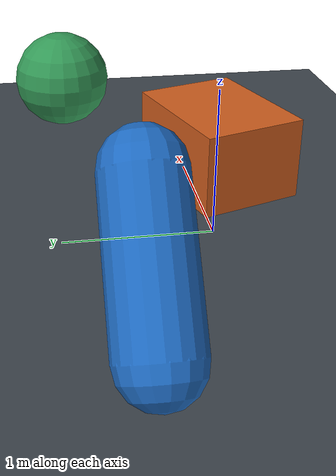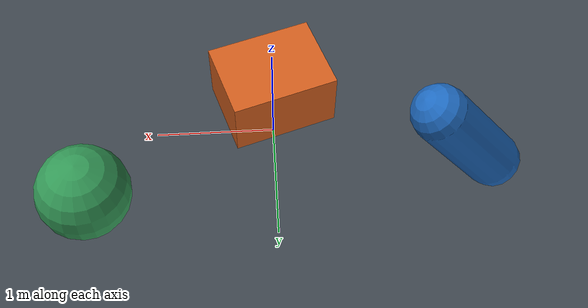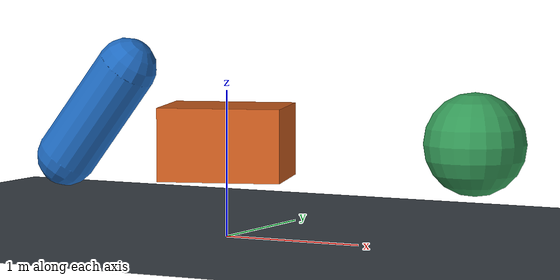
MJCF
<mujoco model="opengl native gizmo">
  <option gravity="0 0 0"/>
  <visual>
    <headlight ambient="0.25 0.25 0.25" diffuse="0.65 0.65 0.65" specular="0.25 0.25 0.25"/>
  </visual>
  <asset>
    <material name="floor" rgba="0.24 0.27 0.30 1"/>
    <material name="orange" rgba="0.82 0.37 0.12 1"/>
    <material name="blue" rgba="0.12 0.42 0.76 1"/>
    <material name="green" rgba="0.20 0.60 0.34 1"/>
  </asset>
  <worldbody>
    <light pos="-3 -4 7" dir="0.35 0.4 -1" diffuse="0.75 0.75 0.75"/>
    <geom name="floor" type="plane" size="7 7 0.1" material="floor"/>

    <body name="free_box" pos="0 0 0.65" euler="0 0 18">
      <freejoint/>
      <geom name="box" type="box" size="0.42 0.32 0.25" material="orange"/>
    </body>
    <body name="free_capsule" pos="-1.45 0.65 0.75" euler="0 38 -20">
      <freejoint/>
      <geom name="capsule" type="capsule" size="0.22 0.42" material="blue"/>
    </body>
    <body name="free_sphere" pos="1.45 0.9 0.62">
      <freejoint/>
      <geom name="sphere" type="sphere" size="0.36" material="green"/>
    </body>
  </worldbody>
</mujoco>
